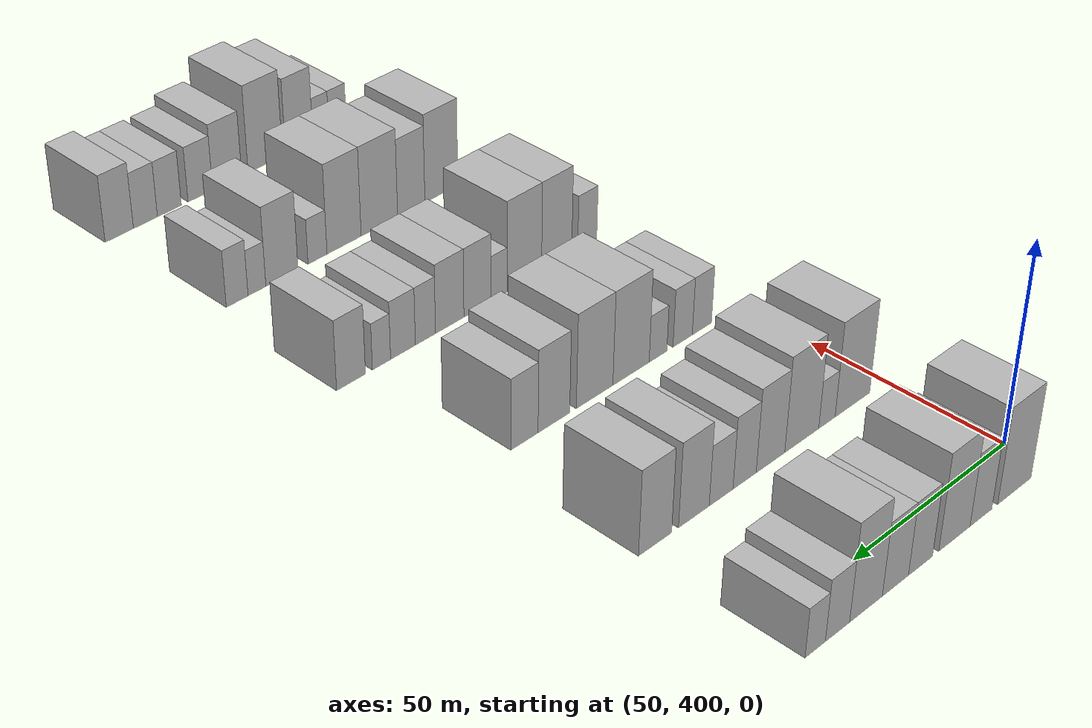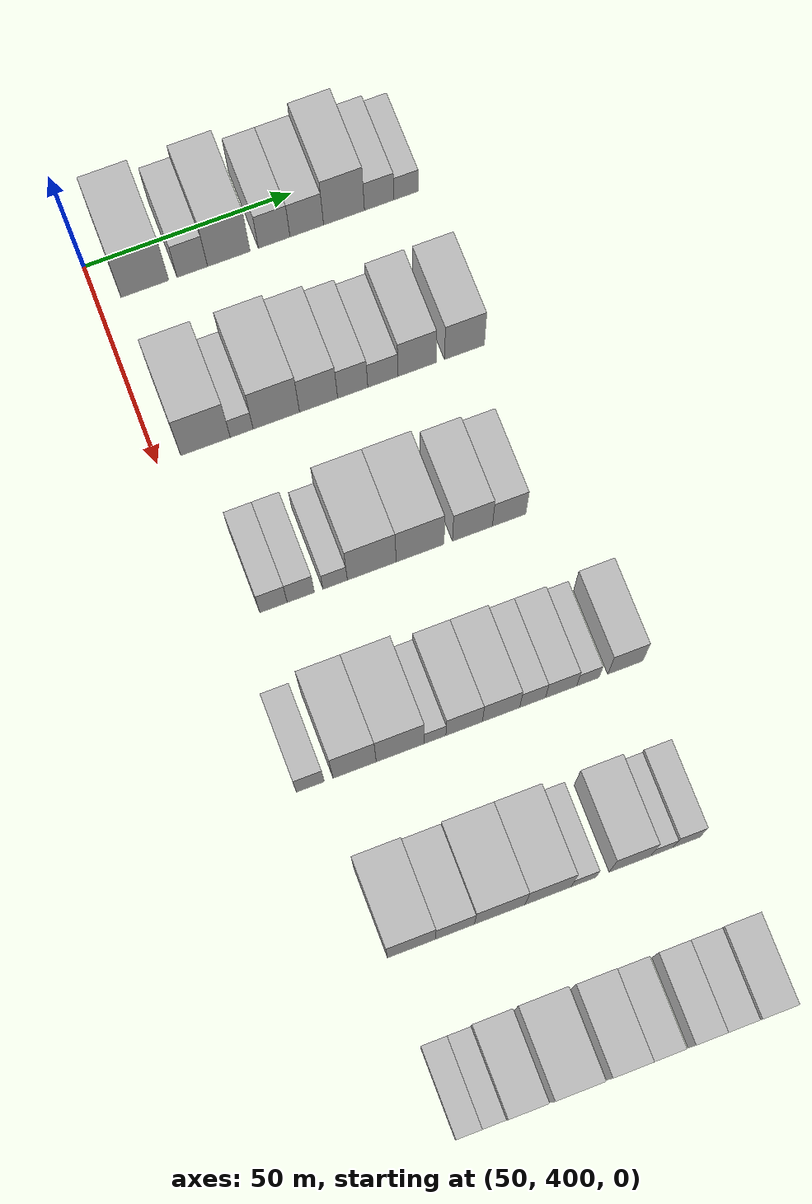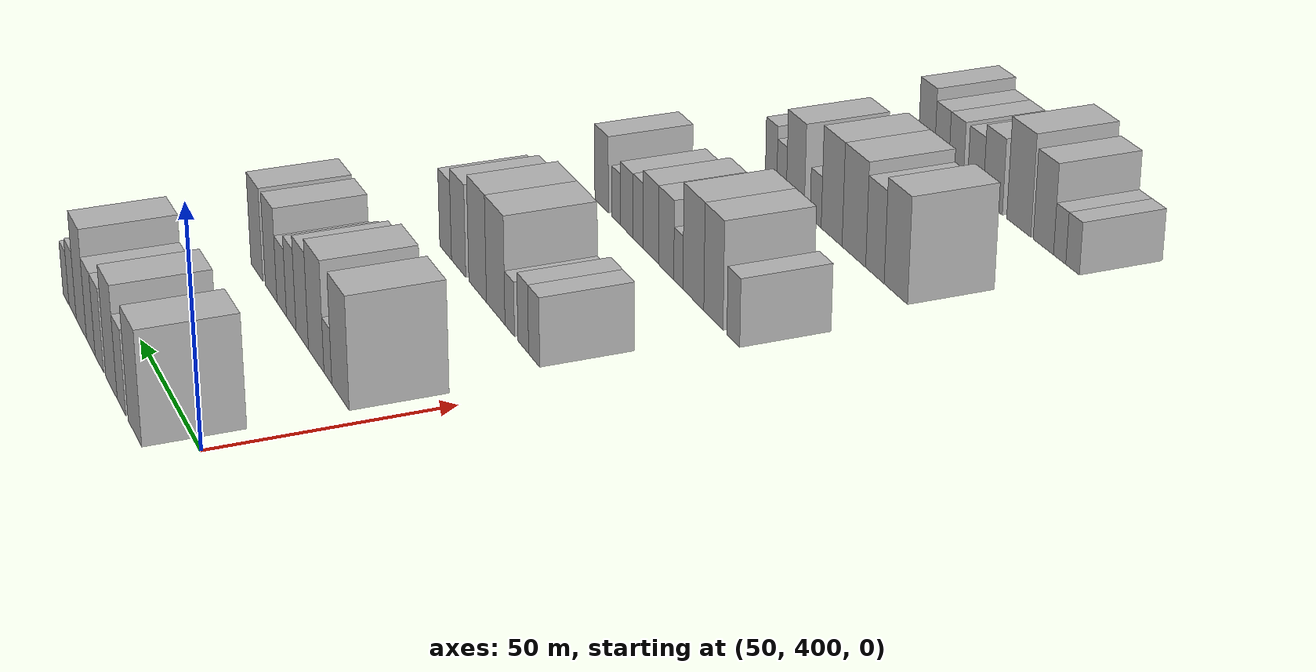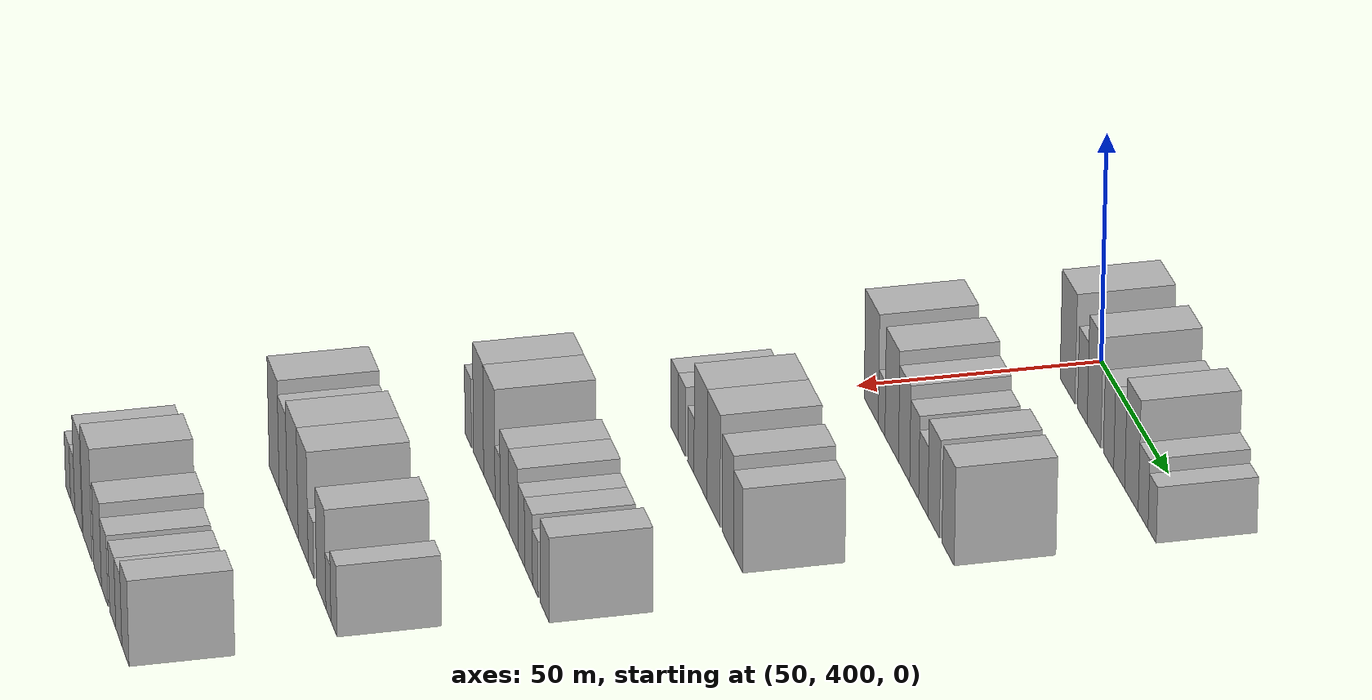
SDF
<sdf version="1.6">
 <world name="default">
  <model name="building_118">
   <static>1</static>
   <pose>50.0000 411.1367 0 0.000000 0.000000 0.000000</pose>
   <link name="link">
    <pose>0 0 12.00 0 0 0</pose>
    <collision name="collision"><geometry><box><size>20.0000 11.4746 24.0000</size></box></geometry></collision>
    <visual name="visual">
     <cast_shadows>0</cast_shadows>
     <geometry><box><size>20.0000 11.4746 24.0000</size></box></geometry>
     <material>
      <script>
       <uri>model://HANNAS_wall/materials/scripts</uri>
       <uri>model://HANNAS_wall/materials/textures</uri>
       <name>vrc/HANNAS_wall</name>
      </script>
     </material>
    </visual>
   </link>
  </model>
  <model name="building_119">
   <static>1</static>
   <pose>50.0000 422.5371 0 0.000000 0.000000 0.000000</pose>
   <link name="link">
    <pose>0 0 9.00 0 0 0</pose>
    <collision name="collision"><geometry><box><size>20.0000 7.3262 18.0000</size></box></geometry></collision>
    <visual name="visual">
     <cast_shadows>0</cast_shadows>
     <geometry><box><size>20.0000 7.3262 18.0000</size></box></geometry>
     <material>
      <script>
       <uri>model://HANNAS_wall/materials/scripts</uri>
       <uri>model://HANNAS_wall/materials/textures</uri>
       <name>vrc/HANNAS_wall</name>
      </script>
     </material>
    </visual>
   </link>
  </model>
  <model name="building_120">
   <static>1</static>
   <pose>50.0000 431.3354 0 0.000000 0.000000 0.000000</pose>
   <link name="link">
    <pose>0 0 12.00 0 0 0</pose>
    <collision name="collision"><geometry><box><size>20.0000 10.2705 24.0000</size></box></geometry></collision>
    <visual name="visual">
     <cast_shadows>0</cast_shadows>
     <geometry><box><size>20.0000 10.2705 24.0000</size></box></geometry>
     <material>
      <script>
       <uri>model://HANNAS_wall/materials/scripts</uri>
       <uri>model://HANNAS_wall/materials/textures</uri>
       <name>vrc/HANNAS_wall</name>
      </script>
     </material>
    </visual>
   </link>
  </model>
  <model name="building_121">
   <static>1</static>
   <pose>50.0000 442.3134 0 0.000000 0.000000 0.000000</pose>
   <link name="link">
    <pose>0 0 9.00 0 0 0</pose>
    <collision name="collision"><geometry><box><size>20.0000 7.6854 18.0000</size></box></geometry></collision>
    <visual name="visual">
     <cast_shadows>0</cast_shadows>
     <geometry><box><size>20.0000 7.6854 18.0000</size></box></geometry>
     <material>
      <script>
       <uri>model://HANNAS_wall/materials/scripts</uri>
       <uri>model://HANNAS_wall/materials/textures</uri>
       <name>vrc/HANNAS_wall</name>
      </script>
     </material>
    </visual>
   </link>
  </model>
  <model name="building_122">
   <static>1</static>
   <pose>50.0000 450.2331 0 0.000000 0.000000 0.000000</pose>
   <link name="link">
    <pose>0 0 9.00 0 0 0</pose>
    <collision name="collision"><geometry><box><size>20.0000 8.1539 18.0000</size></box></geometry></collision>
    <visual name="visual">
     <cast_shadows>0</cast_shadows>
     <geometry><box><size>20.0000 8.1539 18.0000</size></box></geometry>
     <material>
      <script>
       <uri>model://HANNAS_wall/materials/scripts</uri>
       <uri>model://HANNAS_wall/materials/textures</uri>
       <name>vrc/HANNAS_wall</name>
      </script>
     </material>
    </visual>
   </link>
  </model>
  <model name="building_123">
   <static>1</static>
   <pose>50.0000 459.2858 0 0.000000 0.000000 0.000000</pose>
   <link name="link">
    <pose>0 0 12.00 0 0 0</pose>
    <collision name="collision"><geometry><box><size>20.0000 9.9516 24.0000</size></box></geometry></collision>
    <visual name="visual">
     <cast_shadows>0</cast_shadows>
     <geometry><box><size>20.0000 9.9516 24.0000</size></box></geometry>
     <material>
      <script>
       <uri>model://HANNAS_wall/materials/scripts</uri>
       <uri>model://HANNAS_wall/materials/textures</uri>
       <name>vrc/HANNAS_wall</name>
      </script>
     </material>
    </visual>
   </link>
  </model>
  <model name="building_124">
   <static>1</static>
   <pose>50.0000 467.8627 0 0.000000 0.000000 0.000000</pose>
   <link name="link">
    <pose>0 0 7.50 0 0 0</pose>
    <collision name="collision"><geometry><box><size>20.0000 7.2021 15.0000</size></box></geometry></collision>
    <visual name="visual">
     <cast_shadows>0</cast_shadows>
     <geometry><box><size>20.0000 7.2021 15.0000</size></box></geometry>
     <material>
      <script>
       <uri>model://HANNAS_wall/materials/scripts</uri>
       <uri>model://HANNAS_wall/materials/textures</uri>
       <name>vrc/HANNAS_wall</name>
      </script>
     </material>
    </visual>
   </link>
  </model>
  <model name="building_125">
   <static>1</static>
   <pose>50.0000 474.4332 0 0.000000 0.000000 0.000000</pose>
   <link name="link">
    <pose>0 0 6.00 0 0 0</pose>
    <collision name="collision"><geometry><box><size>20.0000 5.9390 12.0000</size></box></geometry></collision>
    <visual name="visual">
     <cast_shadows>0</cast_shadows>
     <geometry><box><size>20.0000 5.9390 12.0000</size></box></geometry>
     <material>
      <script>
       <uri>model://HANNAS_wall/materials/scripts</uri>
       <uri>model://HANNAS_wall/materials/textures</uri>
       <name>vrc/HANNAS_wall</name>
      </script>
     </material>
    </visual>
   </link>
  </model>
  <model name="building_258">
   <static>1</static>
   <pose>90.0000 411.3730 0 0.000000 0.000000 0.000000</pose>
   <link name="link">
    <pose>0 0 12.00 0 0 0</pose>
    <collision name="collision"><geometry><box><size>20.0000 11.7048 24.0000</size></box></geometry></collision>
    <visual name="visual">
     <cast_shadows>0</cast_shadows>
     <geometry><box><size>20.0000 11.7048 24.0000</size></box></geometry>
     <material>
      <script>
       <uri>model://HANNAS_wall/materials/scripts</uri>
       <uri>model://HANNAS_wall/materials/textures</uri>
       <name>vrc/HANNAS_wall</name>
      </script>
     </material>
    </visual>
   </link>
  </model>
  <model name="building_259">
   <static>1</static>
   <pose>90.0000 419.9454 0 0.000000 0.000000 0.000000</pose>
   <link name="link">
    <pose>0 0 6.00 0 0 0</pose>
    <collision name="collision"><geometry><box><size>20.0000 5.4400 12.0000</size></box></geometry></collision>
    <visual name="visual">
     <cast_shadows>0</cast_shadows>
     <geometry><box><size>20.0000 5.4400 12.0000</size></box></geometry>
     <material>
      <script>
       <uri>model://HANNAS_wall/materials/scripts</uri>
       <uri>model://HANNAS_wall/materials/textures</uri>
       <name>vrc/HANNAS_wall</name>
      </script>
     </material>
    </visual>
   </link>
  </model>
  <model name="building_260">
   <static>1</static>
   <pose>90.0000 428.1868 0 0.000000 0.000000 0.000000</pose>
   <link name="link">
    <pose>0 0 12.00 0 0 0</pose>
    <collision name="collision"><geometry><box><size>20.0000 11.0427 24.0000</size></box></geometry></collision>
    <visual name="visual">
     <cast_shadows>0</cast_shadows>
     <geometry><box><size>20.0000 11.0427 24.0000</size></box></geometry>
     <material>
      <script>
       <uri>model://HANNAS_wall/materials/scripts</uri>
       <uri>model://HANNAS_wall/materials/textures</uri>
       <name>vrc/HANNAS_wall</name>
      </script>
     </material>
    </visual>
   </link>
  </model>
  <model name="building_261">
   <static>1</static>
   <pose>90.0000 438.2460 0 0.000000 0.000000 0.000000</pose>
   <link name="link">
    <pose>0 0 10.50 0 0 0</pose>
    <collision name="collision"><geometry><box><size>20.0000 9.0757 21.0000</size></box></geometry></collision>
    <visual name="visual">
     <cast_shadows>0</cast_shadows>
     <geometry><box><size>20.0000 9.0757 21.0000</size></box></geometry>
     <material>
      <script>
       <uri>model://HANNAS_wall/materials/scripts</uri>
       <uri>model://HANNAS_wall/materials/textures</uri>
       <name>vrc/HANNAS_wall</name>
      </script>
     </material>
    </visual>
   </link>
  </model>
  <model name="building_262">
   <static>1</static>
   <pose>90.0000 446.3925 0 0.000000 0.000000 0.000000</pose>
   <link name="link">
    <pose>0 0 9.00 0 0 0</pose>
    <collision name="collision"><geometry><box><size>20.0000 7.2173 18.0000</size></box></geometry></collision>
    <visual name="visual">
     <cast_shadows>0</cast_shadows>
     <geometry><box><size>20.0000 7.2173 18.0000</size></box></geometry>
     <material>
      <script>
       <uri>model://HANNAS_wall/materials/scripts</uri>
       <uri>model://HANNAS_wall/materials/textures</uri>
       <name>vrc/HANNAS_wall</name>
      </script>
     </material>
    </visual>
   </link>
  </model>
  <model name="building_263">
   <static>1</static>
   <pose>90.0000 453.6356 0 0.000000 0.000000 0.000000</pose>
   <link name="link">
    <pose>0 0 7.50 0 0 0</pose>
    <collision name="collision"><geometry><box><size>20.0000 7.2689 15.0000</size></box></geometry></collision>
    <visual name="visual">
     <cast_shadows>0</cast_shadows>
     <geometry><box><size>20.0000 7.2689 15.0000</size></box></geometry>
     <material>
      <script>
       <uri>model://HANNAS_wall/materials/scripts</uri>
       <uri>model://HANNAS_wall/materials/textures</uri>
       <name>vrc/HANNAS_wall</name>
      </script>
     </material>
    </visual>
   </link>
  </model>
  <model name="building_264">
   <static>1</static>
   <pose>90.0000 461.8416 0 0.000000 0.000000 0.000000</pose>
   <link name="link">
    <pose>0 0 10.50 0 0 0</pose>
    <collision name="collision"><geometry><box><size>20.0000 9.1431 21.0000</size></box></geometry></collision>
    <visual name="visual">
     <cast_shadows>0</cast_shadows>
     <geometry><box><size>20.0000 9.1431 21.0000</size></box></geometry>
     <material>
      <script>
       <uri>model://HANNAS_wall/materials/scripts</uri>
       <uri>model://HANNAS_wall/materials/textures</uri>
       <name>vrc/HANNAS_wall</name>
      </script>
     </material>
    </visual>
   </link>
  </model>
  <model name="building_265">
   <static>1</static>
   <pose>90.0000 473.2131 0 0.000000 0.000000 0.000000</pose>
   <link name="link">
    <pose>0 0 10.50 0 0 0</pose>
    <collision name="collision"><geometry><box><size>20.0000 9.5998 21.0000</size></box></geometry></collision>
    <visual name="visual">
     <cast_shadows>0</cast_shadows>
     <geometry><box><size>20.0000 9.5998 21.0000</size></box></geometry>
     <material>
      <script>
       <uri>model://HANNAS_wall/materials/scripts</uri>
       <uri>model://HANNAS_wall/materials/textures</uri>
       <name>vrc/HANNAS_wall</name>
      </script>
     </material>
    </visual>
   </link>
  </model>
  <model name="building_386">
   <static>1</static>
   <pose>130.0000 412.8535 0 0.000000 0.000000 0.000000</pose>
   <link name="link">
    <pose>0 0 7.50 0 0 0</pose>
    <collision name="collision"><geometry><box><size>20.0000 6.3970 15.0000</size></box></geometry></collision>
    <visual name="visual">
     <cast_shadows>0</cast_shadows>
     <geometry><box><size>20.0000 6.3970 15.0000</size></box></geometry>
     <material>
      <script>
       <uri>model://HANNAS_wall/materials/scripts</uri>
       <uri>model://HANNAS_wall/materials/textures</uri>
       <name>vrc/HANNAS_wall</name>
      </script>
     </material>
    </visual>
   </link>
  </model>
  <model name="building_387">
   <static>1</static>
   <pose>130.0000 419.2220 0 0.000000 0.000000 0.000000</pose>
   <link name="link">
    <pose>0 0 7.50 0 0 0</pose>
    <collision name="collision"><geometry><box><size>20.0000 6.3401 15.0000</size></box></geometry></collision>
    <visual name="visual">
     <cast_shadows>0</cast_shadows>
     <geometry><box><size>20.0000 6.3401 15.0000</size></box></geometry>
     <material>
      <script>
       <uri>model://HANNAS_wall/materials/scripts</uri>
       <uri>model://HANNAS_wall/materials/textures</uri>
       <name>vrc/HANNAS_wall</name>
      </script>
     </material>
    </visual>
   </link>
  </model>
  <model name="building_388">
   <static>1</static>
   <pose>130.0000 427.2524 0 0.000000 0.000000 0.000000</pose>
   <link name="link">
    <pose>0 0 6.00 0 0 0</pose>
    <collision name="collision"><geometry><box><size>20.0000 5.7208 12.0000</size></box></geometry></collision>
    <visual name="visual">
     <cast_shadows>0</cast_shadows>
     <geometry><box><size>20.0000 5.7208 12.0000</size></box></geometry>
     <material>
      <script>
       <uri>model://HANNAS_wall/materials/scripts</uri>
       <uri>model://HANNAS_wall/materials/textures</uri>
       <name>vrc/HANNAS_wall</name>
      </script>
     </material>
    </visual>
   </link>
  </model>
  <model name="building_389">
   <static>1</static>
   <pose>130.0000 435.8497 0 0.000000 0.000000 0.000000</pose>
   <link name="link">
    <pose>0 0 12.00 0 0 0</pose>
    <collision name="collision"><geometry><box><size>20.0000 11.4738 24.0000</size></box></geometry></collision>
    <visual name="visual">
     <cast_shadows>0</cast_shadows>
     <geometry><box><size>20.0000 11.4738 24.0000</size></box></geometry>
     <material>
      <script>
       <uri>model://HANNAS_wall/materials/scripts</uri>
       <uri>model://HANNAS_wall/materials/textures</uri>
       <name>vrc/HANNAS_wall</name>
      </script>
     </material>
    </visual>
   </link>
  </model>
  <model name="building_390">
   <static>1</static>
   <pose>130.0000 447.2169 0 0.000000 0.000000 0.000000</pose>
   <link name="link">
    <pose>0 0 12.00 0 0 0</pose>
    <collision name="collision"><geometry><box><size>20.0000 11.2604 24.0000</size></box></geometry></collision>
    <visual name="visual">
     <cast_shadows>0</cast_shadows>
     <geometry><box><size>20.0000 11.2604 24.0000</size></box></geometry>
     <material>
      <script>
       <uri>model://HANNAS_wall/materials/scripts</uri>
       <uri>model://HANNAS_wall/materials/textures</uri>
       <name>vrc/HANNAS_wall</name>
      </script>
     </material>
    </visual>
   </link>
  </model>
  <model name="building_391">
   <static>1</static>
   <pose>130.0000 459.5739 0 0.000000 0.000000 0.000000</pose>
   <link name="link">
    <pose>0 0 10.50 0 0 0</pose>
    <collision name="collision"><geometry><box><size>20.0000 9.4536 21.0000</size></box></geometry></collision>
    <visual name="visual">
     <cast_shadows>0</cast_shadows>
     <geometry><box><size>20.0000 9.4536 21.0000</size></box></geometry>
     <material>
      <script>
       <uri>model://HANNAS_wall/materials/scripts</uri>
       <uri>model://HANNAS_wall/materials/textures</uri>
       <name>vrc/HANNAS_wall</name>
      </script>
     </material>
    </visual>
   </link>
  </model>
  <model name="building_392">
   <static>1</static>
   <pose>130.0000 468.2665 0 0.000000 0.000000 0.000000</pose>
   <link name="link">
    <pose>0 0 9.00 0 0 0</pose>
    <collision name="collision"><geometry><box><size>20.0000 7.9317 18.0000</size></box></geometry></collision>
    <visual name="visual">
     <cast_shadows>0</cast_shadows>
     <geometry><box><size>20.0000 7.9317 18.0000</size></box></geometry>
     <material>
      <script>
       <uri>model://HANNAS_wall/materials/scripts</uri>
       <uri>model://HANNAS_wall/materials/textures</uri>
       <name>vrc/HANNAS_wall</name>
      </script>
     </material>
    </visual>
   </link>
  </model>
  <model name="building_526">
   <static>1</static>
   <pose>170.0000 406.6472 0 0.000000 0.000000 0.000000</pose>
   <link name="link">
    <pose>0 0 7.50 0 0 0</pose>
    <collision name="collision"><geometry><box><size>20.0000 6.4038 15.0000</size></box></geometry></collision>
    <visual name="visual">
     <cast_shadows>0</cast_shadows>
     <geometry><box><size>20.0000 6.4038 15.0000</size></box></geometry>
     <material>
      <script>
       <uri>model://HANNAS_wall/materials/scripts</uri>
       <uri>model://HANNAS_wall/materials/textures</uri>
       <name>vrc/HANNAS_wall</name>
      </script>
     </material>
    </visual>
   </link>
  </model>
  <model name="building_527">
   <static>1</static>
   <pose>170.0000 416.8096 0 0.000000 0.000000 0.000000</pose>
   <link name="link">
    <pose>0 0 12.00 0 0 0</pose>
    <collision name="collision"><geometry><box><size>20.0000 9.9210 24.0000</size></box></geometry></collision>
    <visual name="visual">
     <cast_shadows>0</cast_shadows>
     <geometry><box><size>20.0000 9.9210 24.0000</size></box></geometry>
     <material>
      <script>
       <uri>model://HANNAS_wall/materials/scripts</uri>
       <uri>model://HANNAS_wall/materials/textures</uri>
       <name>vrc/HANNAS_wall</name>
      </script>
     </material>
    </visual>
   </link>
  </model>
  <model name="building_528">
   <static>1</static>
   <pose>170.0000 427.3134 0 0.000000 0.000000 0.000000</pose>
   <link name="link">
    <pose>0 0 12.00 0 0 0</pose>
    <collision name="collision"><geometry><box><size>20.0000 11.0865 24.0000</size></box></geometry></collision>
    <visual name="visual">
     <cast_shadows>0</cast_shadows>
     <geometry><box><size>20.0000 11.0865 24.0000</size></box></geometry>
     <material>
      <script>
       <uri>model://HANNAS_wall/materials/scripts</uri>
       <uri>model://HANNAS_wall/materials/textures</uri>
       <name>vrc/HANNAS_wall</name>
      </script>
     </material>
    </visual>
   </link>
  </model>
  <model name="building_529">
   <static>1</static>
   <pose>170.0000 435.3536 0 0.000000 0.000000 0.000000</pose>
   <link name="link">
    <pose>0 0 6.00 0 0 0</pose>
    <collision name="collision"><geometry><box><size>20.0000 4.9940 12.0000</size></box></geometry></collision>
    <visual name="visual">
     <cast_shadows>0</cast_shadows>
     <geometry><box><size>20.0000 4.9940 12.0000</size></box></geometry>
     <material>
      <script>
       <uri>model://HANNAS_wall/materials/scripts</uri>
       <uri>model://HANNAS_wall/materials/textures</uri>
       <name>vrc/HANNAS_wall</name>
      </script>
     </material>
    </visual>
   </link>
  </model>
  <model name="building_530">
   <static>1</static>
   <pose>170.0000 442.0939 0 0.000000 0.000000 0.000000</pose>
   <link name="link">
    <pose>0 0 9.00 0 0 0</pose>
    <collision name="collision"><geometry><box><size>20.0000 8.4865 18.0000</size></box></geometry></collision>
    <visual name="visual">
     <cast_shadows>0</cast_shadows>
     <geometry><box><size>20.0000 8.4865 18.0000</size></box></geometry>
     <material>
      <script>
       <uri>model://HANNAS_wall/materials/scripts</uri>
       <uri>model://HANNAS_wall/materials/textures</uri>
       <name>vrc/HANNAS_wall</name>
      </script>
     </material>
    </visual>
   </link>
  </model>
  <model name="building_531">
   <static>1</static>
   <pose>170.0000 450.6701 0 0.000000 0.000000 0.000000</pose>
   <link name="link">
    <pose>0 0 9.00 0 0 0</pose>
    <collision name="collision"><geometry><box><size>20.0000 8.6661 18.0000</size></box></geometry></collision>
    <visual name="visual">
     <cast_shadows>0</cast_shadows>
     <geometry><box><size>20.0000 8.6661 18.0000</size></box></geometry>
     <material>
      <script>
       <uri>model://HANNAS_wall/materials/scripts</uri>
       <uri>model://HANNAS_wall/materials/textures</uri>
       <name>vrc/HANNAS_wall</name>
      </script>
     </material>
    </visual>
   </link>
  </model>
  <model name="building_532">
   <static>1</static>
   <pose>170.0000 458.0155 0 0.000000 0.000000 0.000000</pose>
   <link name="link">
    <pose>0 0 7.50 0 0 0</pose>
    <collision name="collision"><geometry><box><size>20.0000 6.0246 15.0000</size></box></geometry></collision>
    <visual name="visual">
     <cast_shadows>0</cast_shadows>
     <geometry><box><size>20.0000 6.0246 15.0000</size></box></geometry>
     <material>
      <script>
       <uri>model://HANNAS_wall/materials/scripts</uri>
       <uri>model://HANNAS_wall/materials/textures</uri>
       <name>vrc/HANNAS_wall</name>
      </script>
     </material>
    </visual>
   </link>
  </model>
  <model name="building_533">
   <static>1</static>
   <pose>170.0000 464.6826 0 0.000000 0.000000 0.000000</pose>
   <link name="link">
    <pose>0 0 7.50 0 0 0</pose>
    <collision name="collision"><geometry><box><size>20.0000 7.3096 15.0000</size></box></geometry></collision>
    <visual name="visual">
     <cast_shadows>0</cast_shadows>
     <geometry><box><size>20.0000 7.3096 15.0000</size></box></geometry>
     <material>
      <script>
       <uri>model://HANNAS_wall/materials/scripts</uri>
       <uri>model://HANNAS_wall/materials/textures</uri>
       <name>vrc/HANNAS_wall</name>
      </script>
     </material>
    </visual>
   </link>
  </model>
  <model name="building_534">
   <static>1</static>
   <pose>170.0000 470.9745 0 0.000000 0.000000 0.000000</pose>
   <link name="link">
    <pose>0 0 6.00 0 0 0</pose>
    <collision name="collision"><geometry><box><size>20.0000 5.2743 12.0000</size></box></geometry></collision>
    <visual name="visual">
     <cast_shadows>0</cast_shadows>
     <geometry><box><size>20.0000 5.2743 12.0000</size></box></geometry>
     <material>
      <script>
       <uri>model://HANNAS_wall/materials/scripts</uri>
       <uri>model://HANNAS_wall/materials/textures</uri>
       <name>vrc/HANNAS_wall</name>
      </script>
     </material>
    </visual>
   </link>
  </model>
  <model name="building_535">
   <static>1</static>
   <pose>170.0000 479.7203 0 0.000000 0.000000 0.000000</pose>
   <link name="link">
    <pose>0 0 9.00 0 0 0</pose>
    <collision name="collision"><geometry><box><size>20.0000 8.2173 18.0000</size></box></geometry></collision>
    <visual name="visual">
     <cast_shadows>0</cast_shadows>
     <geometry><box><size>20.0000 8.2173 18.0000</size></box></geometry>
     <material>
      <script>
       <uri>model://HANNAS_wall/materials/scripts</uri>
       <uri>model://HANNAS_wall/materials/textures</uri>
       <name>vrc/HANNAS_wall</name>
      </script>
     </material>
    </visual>
   </link>
  </model>
  <model name="building_664">
   <static>1</static>
   <pose>210.0000 414.6225 0 0.000000 0.000000 0.000000</pose>
   <link name="link">
    <pose>0 0 12.00 0 0 0</pose>
    <collision name="collision"><geometry><box><size>20.0000 10.8580 24.0000</size></box></geometry></collision>
    <visual name="visual">
     <cast_shadows>0</cast_shadows>
     <geometry><box><size>20.0000 10.8580 24.0000</size></box></geometry>
     <material>
      <script>
       <uri>model://HANNAS_wall/materials/scripts</uri>
       <uri>model://HANNAS_wall/materials/textures</uri>
       <name>vrc/HANNAS_wall</name>
      </script>
     </material>
    </visual>
   </link>
  </model>
  <model name="building_665">
   <static>1</static>
   <pose>210.0000 424.4581 0 0.000000 0.000000 0.000000</pose>
   <link name="link">
    <pose>0 0 10.50 0 0 0</pose>
    <collision name="collision"><geometry><box><size>20.0000 8.8132 21.0000</size></box></geometry></collision>
    <visual name="visual">
     <cast_shadows>0</cast_shadows>
     <geometry><box><size>20.0000 8.8132 21.0000</size></box></geometry>
     <material>
      <script>
       <uri>model://HANNAS_wall/materials/scripts</uri>
       <uri>model://HANNAS_wall/materials/textures</uri>
       <name>vrc/HANNAS_wall</name>
      </script>
     </material>
    </visual>
   </link>
  </model>
  <model name="building_666">
   <static>1</static>
   <pose>210.0000 434.6497 0 0.000000 0.000000 0.000000</pose>
   <link name="link">
    <pose>0 0 12.00 0 0 0</pose>
    <collision name="collision"><geometry><box><size>20.0000 11.5700 24.0000</size></box></geometry></collision>
    <visual name="visual">
     <cast_shadows>0</cast_shadows>
     <geometry><box><size>20.0000 11.5700 24.0000</size></box></geometry>
     <material>
      <script>
       <uri>model://HANNAS_wall/materials/scripts</uri>
       <uri>model://HANNAS_wall/materials/textures</uri>
       <name>vrc/HANNAS_wall</name>
      </script>
     </material>
    </visual>
   </link>
  </model>
  <model name="building_667">
   <static>1</static>
   <pose>210.0000 445.7048 0 0.000000 0.000000 0.000000</pose>
   <link name="link">
    <pose>0 0 12.00 0 0 0</pose>
    <collision name="collision"><geometry><box><size>20.0000 10.5403 24.0000</size></box></geometry></collision>
    <visual name="visual">
     <cast_shadows>0</cast_shadows>
     <geometry><box><size>20.0000 10.5403 24.0000</size></box></geometry>
     <material>
      <script>
       <uri>model://HANNAS_wall/materials/scripts</uri>
       <uri>model://HANNAS_wall/materials/textures</uri>
       <name>vrc/HANNAS_wall</name>
      </script>
     </material>
    </visual>
   </link>
  </model>
  <model name="building_668">
   <static>1</static>
   <pose>210.0000 453.8569 0 0.000000 0.000000 0.000000</pose>
   <link name="link">
    <pose>0 0 6.00 0 0 0</pose>
    <collision name="collision"><geometry><box><size>20.0000 5.7639 12.0000</size></box></geometry></collision>
    <visual name="visual">
     <cast_shadows>0</cast_shadows>
     <geometry><box><size>20.0000 5.7639 12.0000</size></box></geometry>
     <material>
      <script>
       <uri>model://HANNAS_wall/materials/scripts</uri>
       <uri>model://HANNAS_wall/materials/textures</uri>
       <name>vrc/HANNAS_wall</name>
      </script>
     </material>
    </visual>
   </link>
  </model>
  <model name="building_669">
   <static>1</static>
   <pose>210.0000 464.5002 0 0.000000 0.000000 0.000000</pose>
   <link name="link">
    <pose>0 0 10.50 0 0 0</pose>
    <collision name="collision"><geometry><box><size>20.0000 9.5227 21.0000</size></box></geometry></collision>
    <visual name="visual">
     <cast_shadows>0</cast_shadows>
     <geometry><box><size>20.0000 9.5227 21.0000</size></box></geometry>
     <material>
      <script>
       <uri>model://HANNAS_wall/materials/scripts</uri>
       <uri>model://HANNAS_wall/materials/textures</uri>
       <name>vrc/HANNAS_wall</name>
      </script>
     </material>
    </visual>
   </link>
  </model>
  <model name="building_670">
   <static>1</static>
   <pose>210.0000 471.8615 0 0.000000 0.000000 0.000000</pose>
   <link name="link">
    <pose>0 0 6.00 0 0 0</pose>
    <collision name="collision"><geometry><box><size>20.0000 5.1998 12.0000</size></box></geometry></collision>
    <visual name="visual">
     <cast_shadows>0</cast_shadows>
     <geometry><box><size>20.0000 5.1998 12.0000</size></box></geometry>
     <material>
      <script>
       <uri>model://HANNAS_wall/materials/scripts</uri>
       <uri>model://HANNAS_wall/materials/textures</uri>
       <name>vrc/HANNAS_wall</name>
      </script>
     </material>
    </visual>
   </link>
  </model>
  <model name="building_671">
   <static>1</static>
   <pose>210.0000 477.5924 0 0.000000 0.000000 0.000000</pose>
   <link name="link">
    <pose>0 0 7.50 0 0 0</pose>
    <collision name="collision"><geometry><box><size>20.0000 6.2622 15.0000</size></box></geometry></collision>
    <visual name="visual">
     <cast_shadows>0</cast_shadows>
     <geometry><box><size>20.0000 6.2622 15.0000</size></box></geometry>
     <material>
      <script>
       <uri>model://HANNAS_wall/materials/scripts</uri>
       <uri>model://HANNAS_wall/materials/textures</uri>
       <name>vrc/HANNAS_wall</name>
      </script>
     </material>
    </visual>
   </link>
  </model>
  <model name="building_792">
   <static>1</static>
   <pose>250.0000 411.9384 0 0.000000 0.000000 0.000000</pose>
   <link name="link">
    <pose>0 0 6.00 0 0 0</pose>
    <collision name="collision"><geometry><box><size>20.0000 5.7770 12.0000</size></box></geometry></collision>
    <visual name="visual">
     <cast_shadows>0</cast_shadows>
     <geometry><box><size>20.0000 5.7770 12.0000</size></box></geometry>
     <material>
      <script>
       <uri>model://HANNAS_wall/materials/scripts</uri>
       <uri>model://HANNAS_wall/materials/textures</uri>
       <name>vrc/HANNAS_wall</name>
      </script>
     </material>
    </visual>
   </link>
  </model>
  <model name="building_793">
   <static>1</static>
   <pose>250.0000 417.4608 0 0.000000 0.000000 0.000000</pose>
   <link name="link">
    <pose>0 0 6.00 0 0 0</pose>
    <collision name="collision"><geometry><box><size>20.0000 5.2678 12.0000</size></box></geometry></collision>
    <visual name="visual">
     <cast_shadows>0</cast_shadows>
     <geometry><box><size>20.0000 5.2678 12.0000</size></box></geometry>
     <material>
      <script>
       <uri>model://HANNAS_wall/materials/scripts</uri>
       <uri>model://HANNAS_wall/materials/textures</uri>
       <name>vrc/HANNAS_wall</name>
      </script>
     </material>
    </visual>
   </link>
  </model>
  <model name="building_794">
   <static>1</static>
   <pose>250.0000 424.5367 0 0.000000 0.000000 0.000000</pose>
   <link name="link">
    <pose>0 0 10.50 0 0 0</pose>
    <collision name="collision"><geometry><box><size>20.0000 8.8840 21.0000</size></box></geometry></collision>
    <visual name="visual">
     <cast_shadows>0</cast_shadows>
     <geometry><box><size>20.0000 8.8840 21.0000</size></box></geometry>
     <material>
      <script>
       <uri>model://HANNAS_wall/materials/scripts</uri>
       <uri>model://HANNAS_wall/materials/textures</uri>
       <name>vrc/HANNAS_wall</name>
      </script>
     </material>
    </visual>
   </link>
  </model>
  <model name="building_795">
   <static>1</static>
   <pose>250.0000 435.4378 0 0.000000 0.000000 0.000000</pose>
   <link name="link">
    <pose>0 0 12.00 0 0 0</pose>
    <collision name="collision"><geometry><box><size>20.0000 10.9182 24.0000</size></box></geometry></collision>
    <visual name="visual">
     <cast_shadows>0</cast_shadows>
     <geometry><box><size>20.0000 10.9182 24.0000</size></box></geometry>
     <material>
      <script>
       <uri>model://HANNAS_wall/materials/scripts</uri>
       <uri>model://HANNAS_wall/materials/textures</uri>
       <name>vrc/HANNAS_wall</name>
      </script>
     </material>
    </visual>
   </link>
  </model>
  <model name="building_796">
   <static>1</static>
   <pose>250.0000 447.3957 0 0.000000 0.000000 0.000000</pose>
   <link name="link">
    <pose>0 0 9.00 0 0 0</pose>
    <collision name="collision"><geometry><box><size>20.0000 8.9976 18.0000</size></box></geometry></collision>
    <visual name="visual">
     <cast_shadows>0</cast_shadows>
     <geometry><box><size>20.0000 8.9976 18.0000</size></box></geometry>
     <material>
      <script>
       <uri>model://HANNAS_wall/materials/scripts</uri>
       <uri>model://HANNAS_wall/materials/textures</uri>
       <name>vrc/HANNAS_wall</name>
      </script>
     </material>
    </visual>
   </link>
  </model>
  <model name="building_797">
   <static>1</static>
   <pose>250.0000 455.6393 0 0.000000 0.000000 0.000000</pose>
   <link name="link">
    <pose>0 0 7.50 0 0 0</pose>
    <collision name="collision"><geometry><box><size>20.0000 7.4897 15.0000</size></box></geometry></collision>
    <visual name="visual">
     <cast_shadows>0</cast_shadows>
     <geometry><box><size>20.0000 7.4897 15.0000</size></box></geometry>
     <material>
      <script>
       <uri>model://HANNAS_wall/materials/scripts</uri>
       <uri>model://HANNAS_wall/materials/textures</uri>
       <name>vrc/HANNAS_wall</name>
      </script>
     </material>
    </visual>
   </link>
  </model>
  <model name="building_798">
   <static>1</static>
   <pose>250.0000 464.9529 0 0.000000 0.000000 0.000000</pose>
   <link name="link">
    <pose>0 0 7.50 0 0 0</pose>
    <collision name="collision"><geometry><box><size>20.0000 7.1375 15.0000</size></box></geometry></collision>
    <visual name="visual">
     <cast_shadows>0</cast_shadows>
     <geometry><box><size>20.0000 7.1375 15.0000</size></box></geometry>
     <material>
      <script>
       <uri>model://HANNAS_wall/materials/scripts</uri>
       <uri>model://HANNAS_wall/materials/textures</uri>
       <name>vrc/HANNAS_wall</name>
      </script>
     </material>
    </visual>
   </link>
  </model>
  <model name="building_799">
   <static>1</static>
   <pose>250.0000 472.0449 0 0.000000 0.000000 0.000000</pose>
   <link name="link">
    <pose>0 0 7.50 0 0 0</pose>
    <collision name="collision"><geometry><box><size>20.0000 7.0465 15.0000</size></box></geometry></collision>
    <visual name="visual">
     <cast_shadows>0</cast_shadows>
     <geometry><box><size>20.0000 7.0465 15.0000</size></box></geometry>
     <material>
      <script>
       <uri>model://HANNAS_wall/materials/scripts</uri>
       <uri>model://HANNAS_wall/materials/textures</uri>
       <name>vrc/HANNAS_wall</name>
      </script>
     </material>
    </visual>
   </link>
  </model>
  <model name="building_800">
   <static>1</static>
   <pose>250.0000 479.6606 0 0.000000 0.000000 0.000000</pose>
   <link name="link">
    <pose>0 0 9.00 0 0 0</pose>
    <collision name="collision"><geometry><box><size>20.0000 8.1850 18.0000</size></box></geometry></collision>
    <visual name="visual">
     <cast_shadows>0</cast_shadows>
     <geometry><box><size>20.0000 8.1850 18.0000</size></box></geometry>
     <material>
      <script>
       <uri>model://HANNAS_wall/materials/scripts</uri>
       <uri>model://HANNAS_wall/materials/textures</uri>
       <name>vrc/HANNAS_wall</name>
      </script>
     </material>
    </visual>
   </link>
  </model>
 </world>
</sdf>
